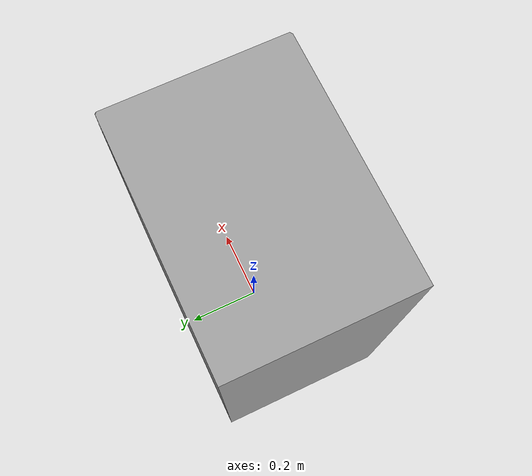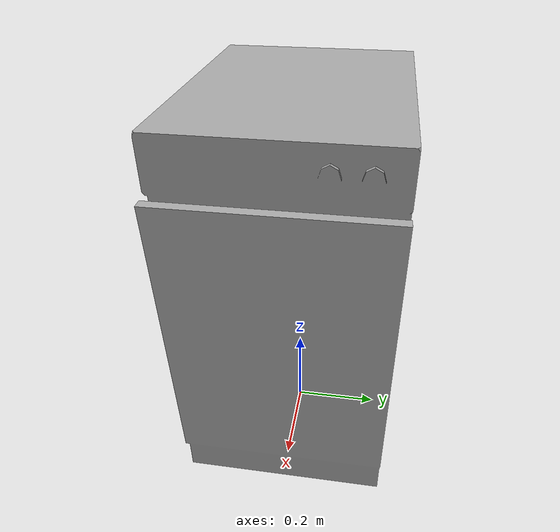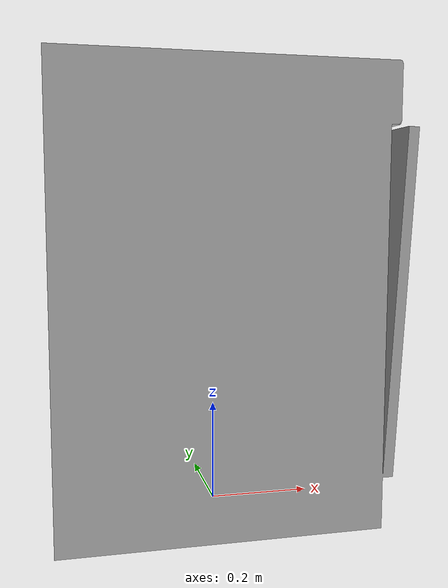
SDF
<?xml version="1.0" ?>
<sdf version="1.0">
  <model name="dishwasher">
    <static>true</static>
    <link name="dishwasher">
      <collision name="dishwasher">
        <pose>0 0 0.4250 0 0 0</pose>
        <geometry>
          <box>
            <size>0.6500 0.4500 0.8500</size>
          </box>
        </geometry>
      </collision>

      <visual name="dishwasher_mesh">
	  <cast_shadows>true</cast_shadows>
        <geometry>
          <mesh>
	        <uri>model://dishwasher/meshes/model.dae</uri>
	      </mesh>
        </geometry>
      </visual>
    </link>
  </model>
</sdf>
